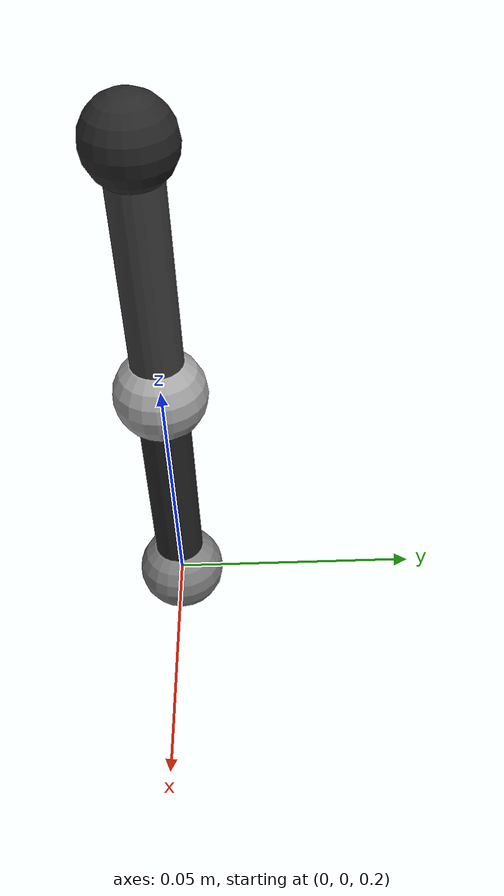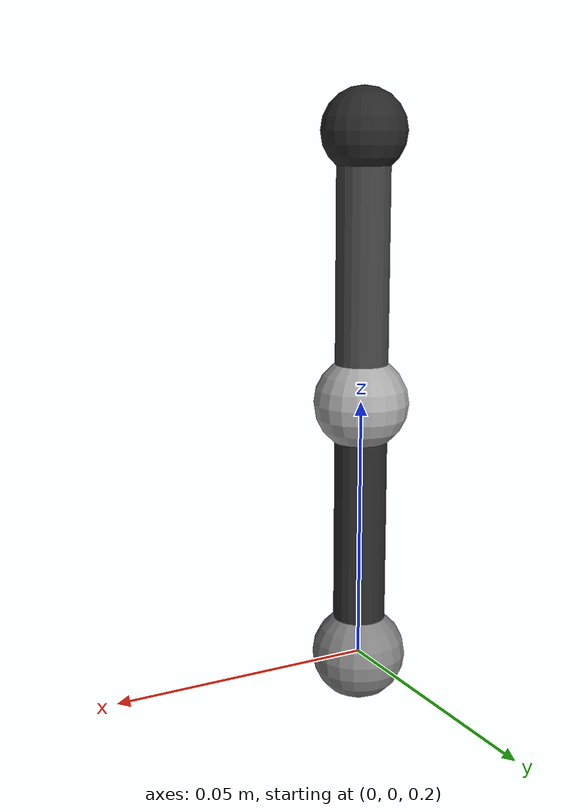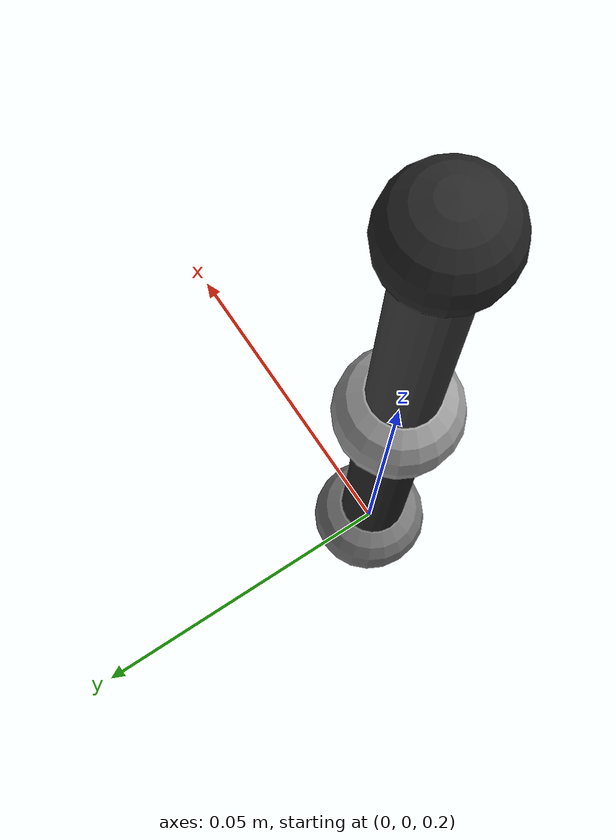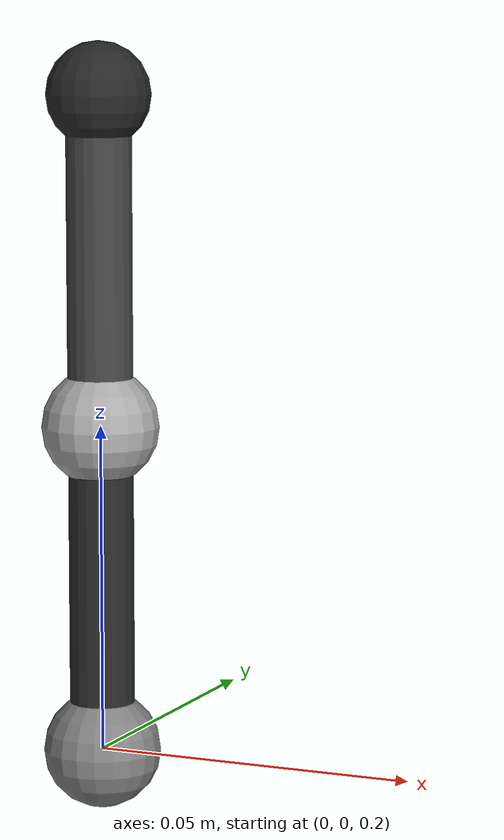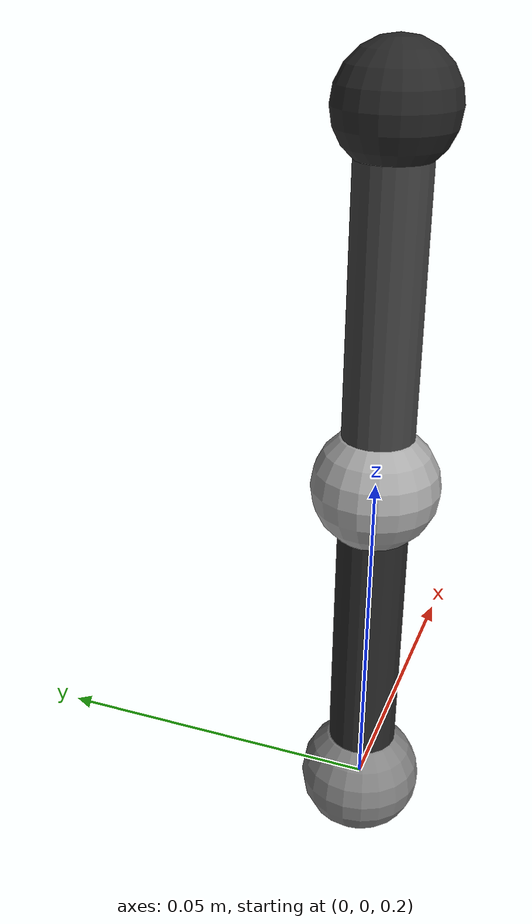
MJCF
<mujoco model="acrobot">

    <option timestep="0.001" gravity="0 0 -9.81" integrator="RK4"/>

    <visual>
        <headlight ambient="0.4 0.4 0.4" diffuse="0.8 0.8 0.8" specular="0.1 0.1 0.1"/>
    </visual>

    <worldbody>
        <!-- Ground plane -->
        <geom type="plane" size="1 1 0.1" rgba="0.85 0.85 0.85 1"/>

        <!-- Fixed pivot — small dark sphere to mark the base -->
        <site name="pivot" pos="0 0 0.3" size="0.008"/>
        <geom type="sphere" pos="0 0 0.3" size="0.008" rgba="0.15 0.15 0.15 1"/>

        <body name="link1" pos="0 0 0.3">
            <joint name="shoulder" type="hinge" axis="0 1 0" pos="0 0 0"
                   damping="0.0004" frictionloss="0.0030535619759663626"/>
            <inertial pos="0 0 -0.046"
                      mass="0.134"
                      diaginertia="0.000277196
                                   0.000277196
                                   0.00005"/>
            <!-- Link 1 rod — dark gray -->
            <geom type="capsule" fromto="0 0 0 0 0 -0.05"
                  size="0.005" rgba="0.25 0.25 0.25 1"/>
            <!-- Sphere at elbow end of link 1 — light gray -->
            <geom type="sphere" pos="0 0 -0.05"
                  size="0.009" rgba="0.65 0.65 0.65 1"/>

            <body name="link2" pos="0 0 -0.05">
                <joint name="elbow" type="hinge" axis="0 1 0" pos="0 0 0"
                       damping="0.0004"
                       frictionloss="0.0007777171177173469"/>
                <inertial pos="0 0 -0.048"
                          mass="0.064"
                          diaginertia="0.000147456
                                       0.000147456
                                       0.00002"/>
                <!-- Link 2 rod — charcoal -->
                <geom type="capsule" fromto="0 0 0 0 0 -0.05"
                      size="0.005" rgba="0.15 0.15 0.15 1"/>
                <!-- Sphere at tip of link 2 — medium gray -->
                <geom type="sphere" pos="0 0 -0.05"
                      size="0.009" rgba="0.50 0.50 0.50 1"/>
            </body>
        </body>
    </worldbody>

    <actuator>
        <!--
            Elbow only (acrobot = underactuated).
            ctrlrange matches max_torque = 0.15 Nm used in Python.
            gear=1 → no mechanical advantage.
        -->
        <motor name="elbow_motor" joint="elbow" gear="1"
               ctrllimited="true" ctrlrange="-0.15 0.15"/>
    </actuator>

</mujoco>
